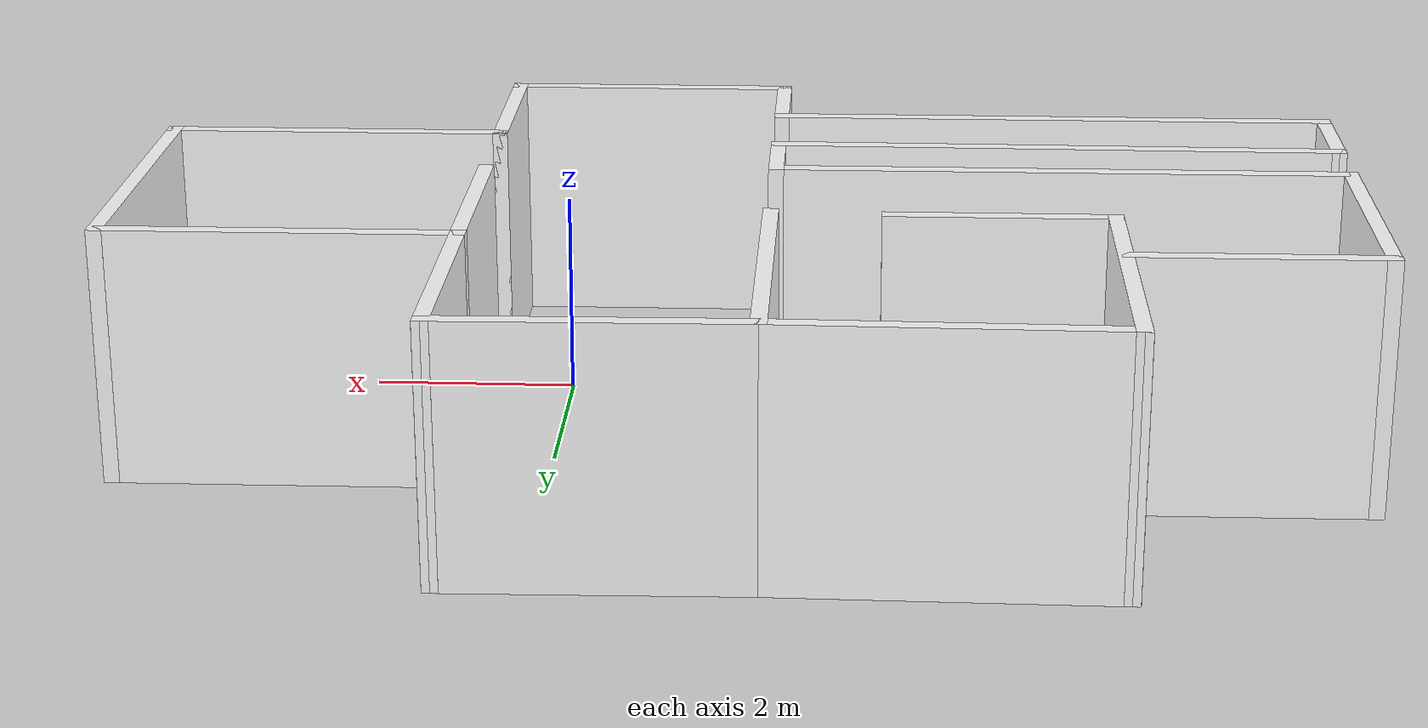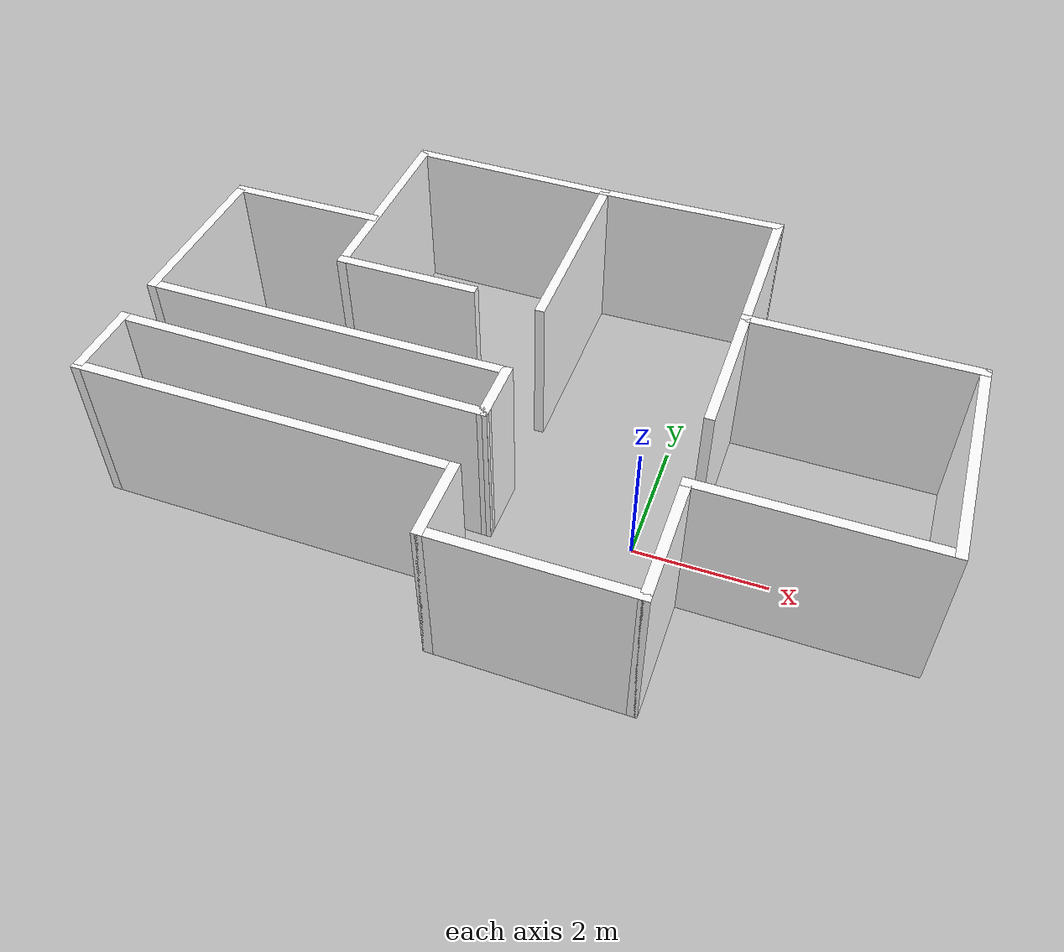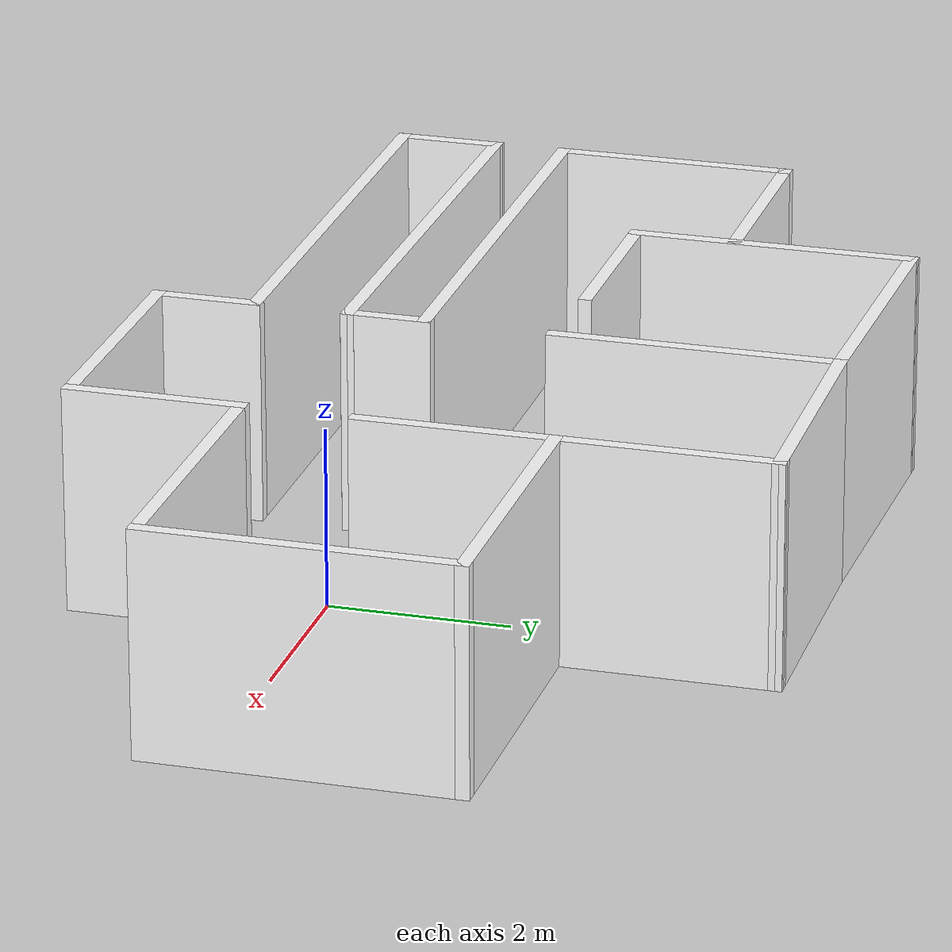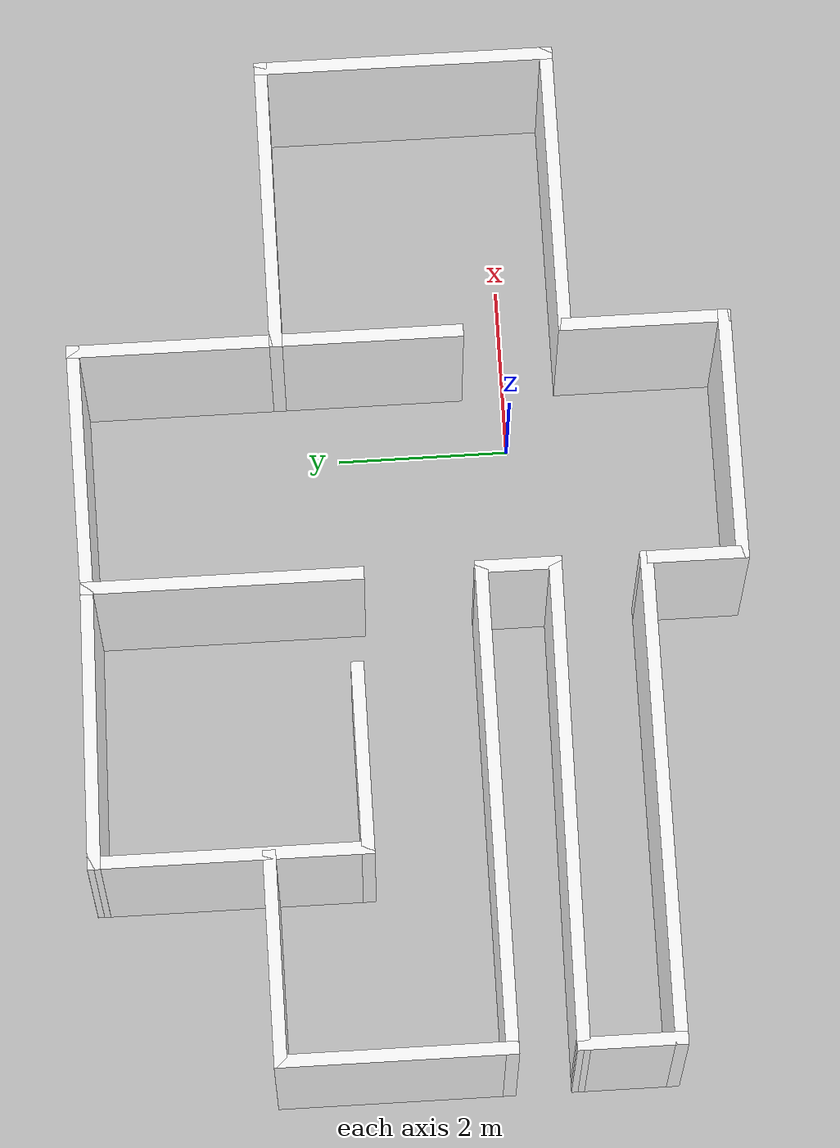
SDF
<?xml version='1.0'?>
<sdf version='1.7'>
  <model name='hourse'>
    <pose>-1.78711 1.26269 0 0 -0 0</pose>
    <link name='Wall_10'>
      <collision name='Wall_10_Collision'>
        <geometry>
          <box>
            <size>3.5 0.15 2.5</size>
          </box>
        </geometry>
        <pose>0 0 1.25 0 -0 0</pose>
      </collision>
      <visual name='Wall_10_Visual'>
        <pose>0 0 1.25 0 -0 0</pose>
        <geometry>
          <box>
            <size>3.5 0.15 2.5</size>
          </box>
        </geometry>
        <material>
          <ambient>1 1 1 1</ambient>
          <diffuse>1 1 1 1</diffuse>
          <specular>0.1 0.1 0.1 1</specular>
        </material>
        <meta>
          <layer>0</layer>
        </meta>
      </visual>
      <pose>5.90036 -0.264256 0 0 -0 1.5708</pose>
    </link>
    <link name='Wall_11'>
      <collision name='Wall_11_Collision'>
        <geometry>
          <box>
            <size>3.5 0.15 2.5</size>
          </box>
        </geometry>
        <pose>0 0 1.25 0 -0 0</pose>
      </collision>
      <visual name='Wall_11_Visual'>
        <pose>0 0 1.25 0 -0 0</pose>
        <geometry>
          <box>
            <size>3.5 0.15 2.5</size>
          </box>
        </geometry>
        <material>
          <ambient>1 1 1 1</ambient>
          <diffuse>1 1 1 1</diffuse>
          <specular>0.1 0.1 0.1 1</specular>
        </material>
        <meta>
          <layer>0</layer>
        </meta>
      </visual>
      <pose>4.22536 1.41074 0 0 -0 3.14159</pose>
    </link>
    <link name='Wall_12'>
      <collision name='Wall_12_Collision'>
        <geometry>
          <box>
            <size>2.5 0.15 2.5</size>
          </box>
        </geometry>
        <pose>0 0 1.25 0 -0 0</pose>
      </collision>
      <visual name='Wall_12_Visual'>
        <pose>0 0 1.25 0 -0 0</pose>
        <geometry>
          <box>
            <size>2.5 0.15 2.5</size>
          </box>
        </geometry>
        <material>
          <ambient>1 1 1 1</ambient>
          <diffuse>1 1 1 1</diffuse>
          <specular>0.1 0.1 0.1 1</specular>
        </material>
        <meta>
          <layer>0</layer>
        </meta>
      </visual>
      <pose>2.55036 2.58574 0 0 -0 1.5708</pose>
    </link>
    <link name='Wall_13'>
      <collision name='Wall_13_Collision'>
        <geometry>
          <box>
            <size>2.99298 0.15 2.5</size>
          </box>
        </geometry>
        <pose>0 0 1.25 0 -0 0</pose>
      </collision>
      <visual name='Wall_13_Visual'>
        <pose>0 0 1.25 0 -0 0</pose>
        <geometry>
          <box>
            <size>2.99298 0.15 2.5</size>
          </box>
        </geometry>
        <material>
          <ambient>1 1 1 1</ambient>
          <diffuse>1 1 1 1</diffuse>
          <specular>0.1 0.1 0.1 1</specular>
        </material>
        <meta>
          <layer>0</layer>
        </meta>
      </visual>
      <pose>1.12898 3.74301 0 0 -0 -3.12912</pose>
    </link>
    <link name='Wall_16'>
      <collision name='Wall_16_Collision'>
        <geometry>
          <box>
            <size>2.25 0.15 2.5</size>
          </box>
        </geometry>
        <pose>0 0 1.25 0 -0 0</pose>
      </collision>
      <visual name='Wall_16_Visual'>
        <pose>0 0 1.25 0 -0 0</pose>
        <geometry>
          <box>
            <size>2.25 0.15 2.5</size>
          </box>
        </geometry>
        <material>
          <ambient>1 1 1 1</ambient>
          <diffuse>1 1 1 1</diffuse>
          <specular>0.1 0.1 0.1 1</specular>
        </material>
        <meta>
          <layer>0</layer>
        </meta>
      </visual>
      <pose>-2.45991 0.687813 0 0 -0 3.14159</pose>
    </link>
    <link name='Wall_17'>
      <collision name='Wall_17_Collision'>
        <geometry>
          <box>
            <size>3.25 0.15 2.5</size>
          </box>
        </geometry>
        <pose>0 0 1.25 0 -0 0</pose>
      </collision>
      <visual name='Wall_17_Visual'>
        <pose>0 0 1.25 0 -0 0</pose>
        <geometry>
          <box>
            <size>3.25 0.15 2.5</size>
          </box>
        </geometry>
        <material>
          <ambient>1 1 1 1</ambient>
          <diffuse>1 1 1 1</diffuse>
          <specular>0.1 0.1 0.1 1</specular>
        </material>
        <meta>
          <layer>0</layer>
        </meta>
      </visual>
      <pose>-3.50991 2.23781 0 0 -0 1.5708</pose>
    </link>
    <link name='Wall_18'>
      <collision name='Wall_18_Collision'>
        <geometry>
          <box>
            <size>3.36812 0.15 2.5</size>
          </box>
        </geometry>
        <pose>0 0 1.25 0 -0 0</pose>
      </collision>
      <visual name='Wall_18_Visual'>
        <pose>0 0 1.25 0 -0 0</pose>
        <geometry>
          <box>
            <size>3.36812 0.15 2.5</size>
          </box>
        </geometry>
        <material>
          <ambient>1 1 1 1</ambient>
          <diffuse>1 1 1 1</diffuse>
          <specular>0.1 0.1 0.1 1</specular>
        </material>
        <meta>
          <layer>0</layer>
        </meta>
      </visual>
      <pose>-1.90116 3.75654 0 0 -0 -0.019435</pose>
    </link>
    <link name='Wall_2'>
      <collision name='Wall_2_Collision'>
        <geometry>
          <box>
            <size>3.25 0.15 2.5</size>
          </box>
        </geometry>
        <pose>0 0 1.25 0 -0 0</pose>
      </collision>
      <visual name='Wall_2_Visual'>
        <pose>0 0 1.25 0 -0 0</pose>
        <geometry>
          <box>
            <size>3.25 0.15 2.5</size>
          </box>
        </geometry>
        <material>
          <ambient>1 1 1 1</ambient>
          <diffuse>1 1 1 1</diffuse>
          <specular>0.1 0.1 0.1 1</specular>
        </material>
        <meta>
          <layer>0</layer>
        </meta>
      </visual>
      <pose>-0.2924 2.17527 0 0 -0 -1.5708</pose>
    </link>
    <link name='Wall_20'>
      <collision name='Wall_20_Collision'>
        <geometry>
          <box>
            <size>5.75 0.15 2.5</size>
          </box>
        </geometry>
        <pose>0 0 1.25 0 -0 0</pose>
      </collision>
      <visual name='Wall_20_Visual'>
        <pose>0 0 1.25 0 -0 0</pose>
        <geometry>
          <box>
            <size>5.75 0.15 2.5</size>
          </box>
        </geometry>
        <material>
          <ambient>1 1 1 1</ambient>
          <diffuse>1 1 1 1</diffuse>
          <specular>0.1 0.1 0.1 1</specular>
        </material>
        <meta>
          <layer>0</layer>
        </meta>
      </visual>
      <pose>-3.09965 -0.792546 0 0 -0 3.14159</pose>
    </link>
    <link name='Wall_21'>
      <collision name='Wall_21_Collision'>
        <geometry>
          <box>
            <size>2.75 0.15 2.5</size>
          </box>
        </geometry>
        <pose>0 0 1.25 0 -0 0</pose>
      </collision>
      <visual name='Wall_21_Visual'>
        <pose>0 0 1.25 0 -0 0</pose>
        <geometry>
          <box>
            <size>2.75 0.15 2.5</size>
          </box>
        </geometry>
        <material>
          <ambient>1 1 1 1</ambient>
          <diffuse>1 1 1 1</diffuse>
          <specular>0.1 0.1 0.1 1</specular>
        </material>
        <meta>
          <layer>0</layer>
        </meta>
      </visual>
      <pose>-5.89964 0.507454 0 0 -0 1.5708</pose>
    </link>
    <link name='Wall_22'>
      <collision name='Wall_22_Collision'>
        <geometry>
          <box>
            <size>2.5 0.15 2.5</size>
          </box>
        </geometry>
        <pose>0 0 1.25 0 -0 0</pose>
      </collision>
      <visual name='Wall_22_Visual'>
        <pose>0 0 1.25 0 -0 0</pose>
        <geometry>
          <box>
            <size>2.5 0.15 2.5</size>
          </box>
        </geometry>
        <material>
          <ambient>1 1 1 1</ambient>
          <diffuse>1 1 1 1</diffuse>
          <specular>0.1 0.1 0.1 1</specular>
        </material>
        <meta>
          <layer>0</layer>
        </meta>
      </visual>
      <pose>-4.72464 1.80745 0 0 -0 0</pose>
    </link>
    <link name='Wall_24'>
      <collision name='Wall_24_Collision'>
        <geometry>
          <box>
            <size>5.75 0.15 2.5</size>
          </box>
        </geometry>
        <pose>0 0 1.25 0 -0 0</pose>
      </collision>
      <visual name='Wall_24_Visual'>
        <pose>0 0 1.25 0 -0 0</pose>
        <geometry>
          <box>
            <size>5.75 0.15 2.5</size>
          </box>
        </geometry>
        <material>
          <ambient>1 1 1 1</ambient>
          <diffuse>1 1 1 1</diffuse>
          <specular>0.1 0.1 0.1 1</specular>
        </material>
        <meta>
          <layer>0</layer>
        </meta>
      </visual>
      <pose>-3.09965 -2.68926 0 0 -0 3.14159</pose>
    </link>
    <link name='Wall_25'>
      <collision name='Wall_25_Collision'>
        <geometry>
          <box>
            <size>1.25 0.15 2.5</size>
          </box>
        </geometry>
        <pose>0 0 1.25 0 -0 0</pose>
      </collision>
      <visual name='Wall_25_Visual'>
        <pose>0 0 1.25 0 -0 0</pose>
        <geometry>
          <box>
            <size>1.25 0.15 2.5</size>
          </box>
        </geometry>
        <material>
          <ambient>1 1 1 1</ambient>
          <diffuse>1 1 1 1</diffuse>
          <specular>0.1 0.1 0.1 1</specular>
        </material>
        <meta>
          <layer>0</layer>
        </meta>
      </visual>
      <pose>-5.89964 -2.13926 0 0 -0 1.5708</pose>
    </link>
    <link name='Wall_26'>
      <collision name='Wall_26_Collision'>
        <geometry>
          <box>
            <size>5.75025 0.15 2.5</size>
          </box>
        </geometry>
        <pose>0 0 1.25 0 -0 0</pose>
      </collision>
      <visual name='Wall_26_Visual'>
        <pose>0 0 1.25 0 -0 0</pose>
        <geometry>
          <box>
            <size>5.75025 0.15 2.5</size>
          </box>
        </geometry>
        <material>
          <ambient>1 1 1 1</ambient>
          <diffuse>1 1 1 1</diffuse>
          <specular>0.1 0.1 0.1 1</specular>
        </material>
        <meta>
          <layer>0</layer>
        </meta>
      </visual>
      <pose>-3.09965 -1.6159 0 0 -0 -0.009516</pose>
    </link>
    <link name='Wall_28'>
      <collision name='Wall_28_Collision'>
        <geometry>
          <box>
            <size>2.25 0.15 2.5</size>
          </box>
        </geometry>
        <pose>0 0 1.25 0 -0 0</pose>
      </collision>
      <visual name='Wall_28_Visual'>
        <pose>0 0 1.25 0 -0 0</pose>
        <geometry>
          <box>
            <size>2.25 0.15 2.5</size>
          </box>
        </geometry>
        <material>
          <ambient>1 1 1 1</ambient>
          <diffuse>1 1 1 1</diffuse>
          <specular>0.1 0.1 0.1 1</specular>
        </material>
        <meta>
          <layer>0</layer>
        </meta>
      </visual>
      <pose>2.55036 0.360744 0 0 -0 -1.5708</pose>
    </link>
    <link name='Wall_4'>
      <collision name='Wall_4_Collision'>
        <geometry>
          <box>
            <size>1 0.15 2.5</size>
          </box>
        </geometry>
        <pose>0 0 1.25 0 -0 0</pose>
      </collision>
      <visual name='Wall_4_Visual'>
        <pose>0 0 1.25 0 -0 0</pose>
        <geometry>
          <box>
            <size>1 0.15 2.5</size>
          </box>
        </geometry>
        <material>
          <ambient>1 1 1 1</ambient>
          <diffuse>1 1 1 1</diffuse>
          <specular>0.1 0.1 0.1 1</specular>
        </material>
        <meta>
          <layer>0</layer>
        </meta>
      </visual>
      <pose>-0.299645 -1.21755 0 0 -0 -1.5708</pose>
    </link>
    <link name='Wall_6'>
      <collision name='Wall_6_Collision'>
        <geometry>
          <box>
            <size>1.25 0.15 2.5</size>
          </box>
        </geometry>
        <pose>0 0 1.25 0 -0 0</pose>
      </collision>
      <visual name='Wall_6_Visual'>
        <pose>0 0 1.25 0 -0 0</pose>
        <geometry>
          <box>
            <size>1.25 0.15 2.5</size>
          </box>
        </geometry>
        <material>
          <ambient>1 1 1 1</ambient>
          <diffuse>1 1 1 1</diffuse>
          <specular>0.1 0.1 0.1 1</specular>
        </material>
        <meta>
          <layer>0</layer>
        </meta>
      </visual>
      <pose>-0.299645 -3.23926 0 0 -0 -1.5708</pose>
    </link>
    <link name='Wall_7'>
      <collision name='Wall_7_Collision'>
        <geometry>
          <box>
            <size>3 0.15 2.5</size>
          </box>
        </geometry>
        <pose>0 0 1.25 0 -0 0</pose>
      </collision>
      <visual name='Wall_7_Visual'>
        <pose>0 0 1.25 0 -0 0</pose>
        <geometry>
          <box>
            <size>3 0.15 2.5</size>
          </box>
        </geometry>
        <material>
          <ambient>1 1 1 1</ambient>
          <diffuse>1 1 1 1</diffuse>
          <specular>0.1 0.1 0.1 1</specular>
        </material>
        <meta>
          <layer>0</layer>
        </meta>
      </visual>
      <pose>1.12536 -3.78926 0 0 -0 0</pose>
    </link>
    <link name='Wall_8'>
      <collision name='Wall_8_Collision'>
        <geometry>
          <box>
            <size>2 0.15 2.5</size>
          </box>
        </geometry>
        <pose>0 0 1.25 0 -0 0</pose>
      </collision>
      <visual name='Wall_8_Visual'>
        <pose>0 0 1.25 0 -0 0</pose>
        <geometry>
          <box>
            <size>2 0.15 2.5</size>
          </box>
        </geometry>
        <material>
          <ambient>1 1 1 1</ambient>
          <diffuse>1 1 1 1</diffuse>
          <specular>0.1 0.1 0.1 1</specular>
        </material>
        <meta>
          <layer>0</layer>
        </meta>
      </visual>
      <pose>2.55036 -2.86426 0 0 -0 1.5708</pose>
    </link>
    <link name='Wall_9'>
      <collision name='Wall_9_Collision'>
        <geometry>
          <box>
            <size>3.5 0.15 2.5</size>
          </box>
        </geometry>
        <pose>0 0 1.25 0 -0 0</pose>
      </collision>
      <visual name='Wall_9_Visual'>
        <pose>0 0 1.25 0 -0 0</pose>
        <geometry>
          <box>
            <size>3.5 0.15 2.5</size>
          </box>
        </geometry>
        <material>
          <ambient>1 1 1 1</ambient>
          <diffuse>1 1 1 1</diffuse>
          <specular>0.1 0.1 0.1 1</specular>
        </material>
        <meta>
          <layer>0</layer>
        </meta>
      </visual>
      <pose>4.22536 -1.93926 0 0 -0 0</pose>
    </link>
    <static>1</static>
  </model>
</sdf>
